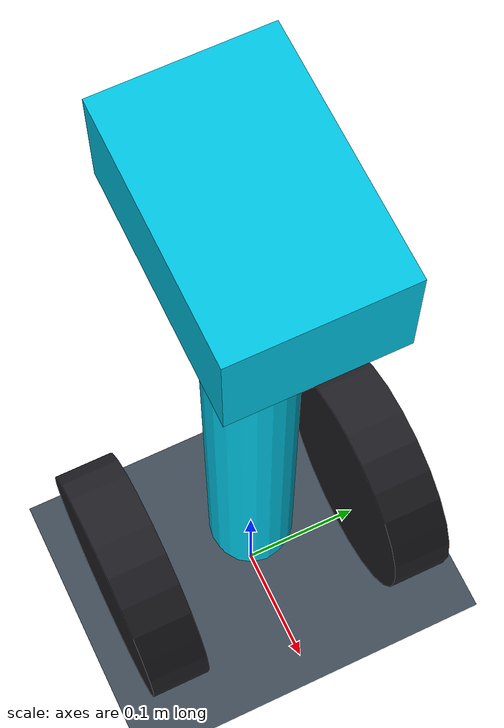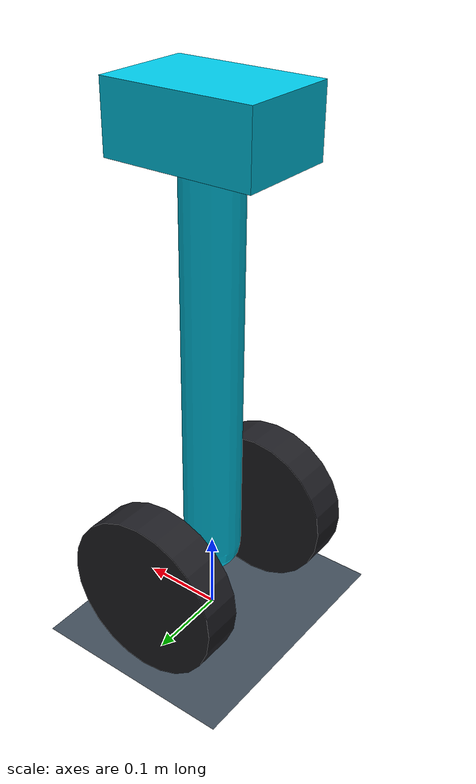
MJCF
<mujoco model="segway">
  <option gravity="0 0 -9.81" timestep="0.001"/>

  <asset>
    <texture type="skybox" builtin="gradient" rgb1="0.5 0.6 0.7" rgb2="0.1 0.1 0.15"
             width="512" height="512"/>
    <texture name="grid" type="2d" builtin="checker" rgb1="0.2 0.25 0.3" rgb2="0.3 0.35 0.4"
             width="512" height="512"/>
    <material name="grid" texture="grid" texrepeat="8 8" reflectance="0.1"/>
    <material name="wheel" rgba="0.12 0.12 0.14 1"/>
    <material name="body" rgba="0.0 0.78 0.9 1"/>
  </asset>

  <worldbody>
    <light pos="0 0 4" dir="0 0 -1" diffuse="0.8 0.8 0.8"/>
    <geom name="floor" type="plane" pos="0 0 0" size="20 20 0.1" material="grid"
          contype="0" conaffinity="0"/>

    <body name="base" pos="0 0 0.1">
      <inertial pos="0 0 0" mass="1.864" diaginertia="0.02 0.02 0.02"/>
      <joint name="slide" type="slide" axis="1 0 0" damping="0.05"/>

      <!-- visual wheels -->
      <geom type="cylinder" size="0.1 0.025" pos="0 0.11 0" euler="90 0 0"
            material="wheel" contype="0" conaffinity="0"/>
      <geom type="cylinder" size="0.1 0.025" pos="0 -0.11 0" euler="90 0 0"
            material="wheel" contype="0" conaffinity="0"/>

      <body name="pendulum" pos="0 0 0">
        <inertial pos="0 0 0.4" mass="5.0" diaginertia="0.2 0.2 0.01"/>
        <joint name="pend_hinge" type="hinge" axis="0 1 0" damping="0.2"/>
        <geom type="capsule" fromto="0 0 0 0 0 0.5" size="0.035" material="body"
              contype="0" conaffinity="0"/>
        <geom type="box" pos="0 0 0.52" size="0.09 0.06 0.04" material="body"
              contype="0" conaffinity="0"/>
      </body>
    </body>
  </worldbody>

  <actuator>
    <general name="wheel_drive" joint="slide" gear="1" ctrllimited="true" ctrlrange="-2000 2000"/>
    <general name="reaction_torque" joint="pend_hinge" gear="1" ctrllimited="true" ctrlrange="-500 500"/>
  </actuator>

  <sensor>
    <jointpos joint="slide"/>
    <jointvel joint="slide"/>
    <jointpos joint="pend_hinge"/>
    <jointvel joint="pend_hinge"/>
  </sensor>
</mujoco>
